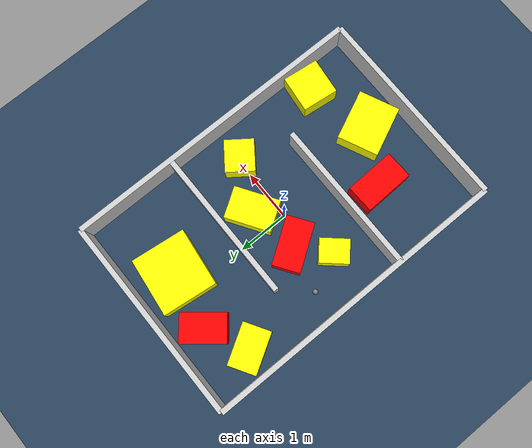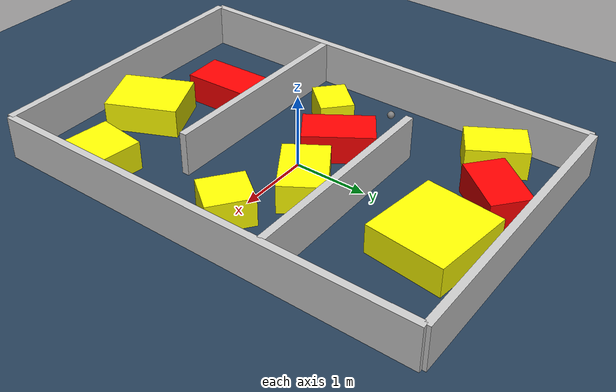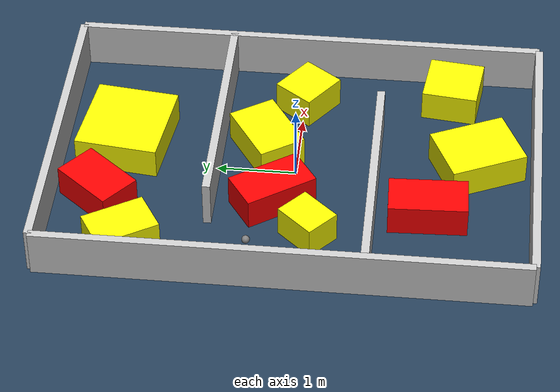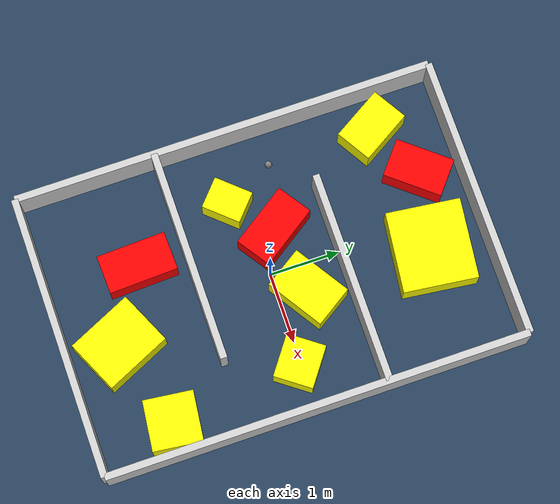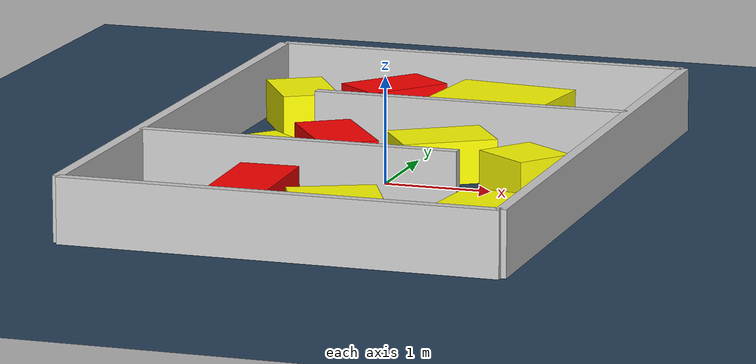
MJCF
<?xml version="1.0" ?>
<mujoco model="generated_environment">
  <option timestep="0.01" integrator="RK4" cone="elliptic"/>
  <default>
    <geom density="1"/>
  </default>
  <asset>
    <texture builtin="gradient" height="3072" rgb1="0.3 0.5 0.7" rgb2="0 0 0" type="skybox" width="512"/>
    <texture builtin="checker" height="300" mark="edge" markrgb="0.8 0.8 0.8" name="groundplane" rgb1="0.2 0.3 0.4" rgb2="0.1 0.2 0.3" type="2d" width="300"/>
    <material name="groundplane" reflectance="0.2" texrepeat="5 5" texture="groundplane" texuniform="true"/>
    <material name="robot" rgba="0.0 1.0 0.0 1"/>
  </asset>
  <worldbody>
    <light dir="0 0 -1" directional="true" pos="0 0 1.5"/>
    <geom condim="4" friction="1.0 0.005 0.001" material="groundplane" name="floor" size="0 0 0.05" type="plane"/>
    <body name="walls">
      <geom name="wall_1" condim="4" pos="-2.0 0.0 0.3" rgba="0.800000011920929 0.800000011920929 0.800000011920929 1.0" size="0.05 3.0 0.3" type="box"/>
      <geom name="wall_2" condim="4" pos="2.0 0.0 0.3" rgba="0.800000011920929 0.800000011920929 0.800000011920929 1.0" size="0.05 3.0 0.3" type="box"/>
      <geom name="wall_3" condim="4" pos="0.0 -3.0 0.3" rgba="0.800000011920929 0.800000011920929 0.800000011920929 1.0" size="2.0 0.05 0.3" type="box"/>
      <geom name="wall_4" condim="4" pos="0.0 3.0 0.3" rgba="0.800000011920929 0.800000011920929 0.800000011920929 1.0" size="2.0 0.05 0.3" type="box"/>
      <geom name="wall_5" condim="4" pos="-0.5 -1.0 0.3" rgba="0.800000011920929 0.800000011920929 0.800000011920929 1.0" size="1.5 0.05 0.3" type="box"/>
      <geom name="wall_6" condim="4" pos="0.5 1.0 0.3" rgba="0.800000011920929 0.800000011920929 0.800000011920929 1.0" size="1.5 0.05 0.3" type="box"/>
    </body>
    <body name="robot">
      <joint name="joint_x" type="slide" pos="0 0 0" axis="1 0 0"/>
      <joint name="joint_y" type="slide" pos="0 0 0" axis="0 1 0"/>
      <geom name="robot" type="sphere" pos="-1.4515159405770548 0.4688711194915669 0.2" size="0.05" mass="5." friction="1.0 0.005 0.0001" condim="4"/>
      <site name="sensor_ball"/>
    </body>
    <body name="obstacle_1_static">
      <geom name="obstacle_1_static" condim="4" pos="-0.6907832325419958 2.3988229924491997 0.2" euler="0 0 230.49805911133458" friction="1.0 0.005 0.001" rgba="1 0 0 1" size="0.42275064405249496 0.27397159747327315 0.2" type="box"/>
    </body>
    <body name="obstacle_2_movable">
      <geom name="obstacle_2_movable" condim="4" pos="0.4084910677365081 0.40567821672234805 0.2" euler="0 0 302.8354424622459" friction="1.0 0.005 0.001" rgba="1 1 0 1" size="0.30683389946657924 0.44415909788379127 0.2" type="box" mass="0.1"/>
      <joint type="free"/>
    </body>
    <body name="obstacle_3_movable">
      <geom name="obstacle_3_movable" condim="4" pos="1.332922932959348 -0.038665145745605756 0.2" euler="0 0 53.64412706413712" friction="1.0 0.005 0.001" rgba="1 1 0 1" size="0.2810674622040561 0.30852503656488084 0.2" type="box" mass="0.1"/>
      <joint type="free"/>
    </body>
    <body name="obstacle_4_movable">
      <geom name="obstacle_4_movable" condim="4" pos="0.29949814067776614 -2.2674084447734293 0.2" euler="0 0 204.66085601658833" friction="1.0 0.005 0.001" rgba="1 1 0 1" size="0.39953008139279084 0.49424012508077125 0.2" type="box" mass="0.1"/>
      <joint type="free"/>
    </body>
    <body name="obstacle_5_movable">
      <geom name="obstacle_5_movable" condim="4" pos="-1.4748174554033673 1.9890311164998575 0.2" euler="0 0 211.03465942017178" friction="1.0 0.005 0.001" rgba="1 1 0 1" size="0.2713245937793227 0.40170869866192027 0.2" type="box" mass="0.1"/>
      <joint type="free"/>
    </body>
    <body name="obstacle_6_movable">
      <geom name="obstacle_6_movable" condim="4" pos="0.40464781320608445 2.1953443337529204 0.2" euler="0 0 263.0905286017388" friction="1.0 0.005 0.001" rgba="1 1 0 1" size="0.5274746797365808 0.5702115170719058 0.2" type="box" mass="0.1"/>
      <joint type="free"/>
    </body>
    <body name="obstacle_7_static">
      <geom name="obstacle_7_static" condim="4" pos="-0.6695556109025327 -1.68962525730907 0.2" euler="0 0 272.0940388812303" friction="1.0 0.005 0.001" rgba="1 0 0 1" size="0.4891071856004539 0.273340659017535 0.2" type="box"/>
    </body>
    <body name="obstacle_8_movable">
      <geom name="obstacle_8_movable" condim="4" pos="1.550598768137214 -1.9100133514987196 0.2" euler="0 0 173.20903837454676" friction="1.0 0.005 0.001" rgba="1 1 0 1" size="0.3564517568576691 0.35094231657474634 0.2" type="box" mass="0.1"/>
      <joint type="free"/>
    </body>
    <body name="obstacle_9_movable">
      <geom name="obstacle_9_movable" condim="4" pos="-1.110365658792011 -0.24613248729602288 0.2" euler="0 0 318.1641699201488" friction="1.0 0.005 0.001" rgba="1 1 0 1" size="0.22838314968819115 0.28077328116521366 0.2" type="box" mass="0.1"/>
      <joint type="free"/>
    </body>
    <body name="obstacle_10_static">
      <geom name="obstacle_10_static" condim="4" pos="-0.5508625353708201 0.24041190337196117 0.2" euler="0 0 34.14498985316474" friction="1.0 0.005 0.001" rgba="1 0 0 1" size="0.26678093857964164 0.4738988416395878 0.2" type="box"/>
    </body>
  </worldbody>
  <actuator>
    <motor name="actuator_x" joint="joint_x" gear="1" ctrlrange="-1 1"/>
    <motor name="actuator_y" joint="joint_y" gear="1" ctrlrange="-1 1"/>
  </actuator>
</mujoco>
